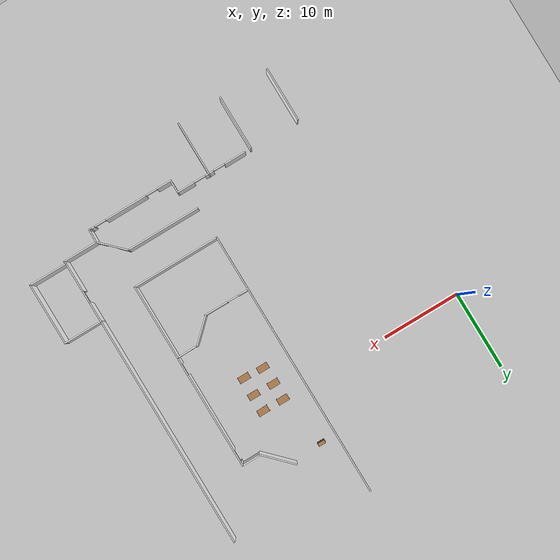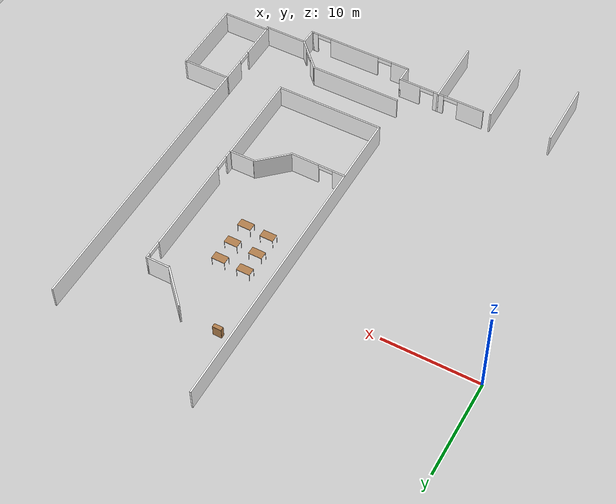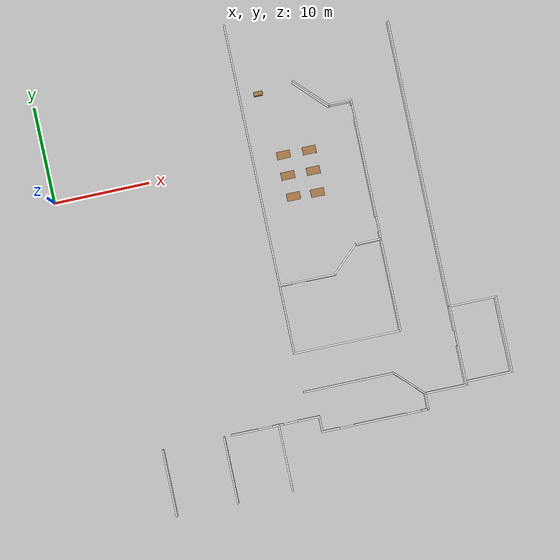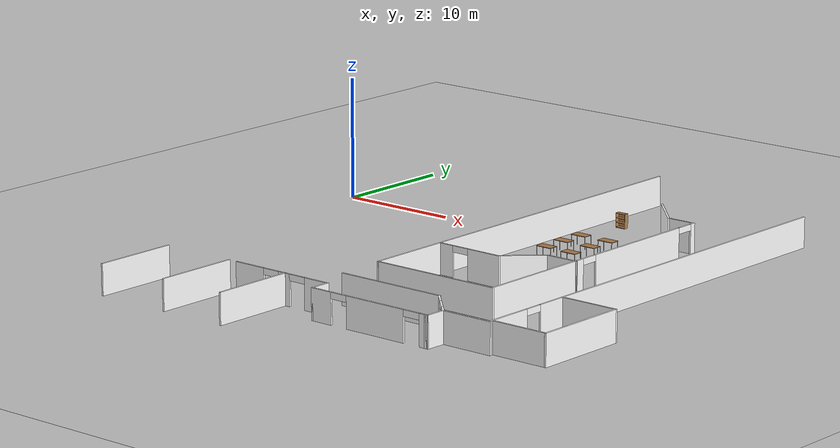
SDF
<sdf version="1.6">
 <world name="default">
  <model name="ground_plane">
   <static>1</static>
   <link name="link">
    <collision name="collision">
     <geometry><plane><normal>0 0 1</normal><size>100 100</size></plane></geometry>
     <surface><friction><ode><mu>100</mu><mu2>50</mu2></ode></friction></surface>
    </collision>
    <visual name="visual">
     <cast_shadows>0</cast_shadows>
     <geometry><plane><normal>0 0 1</normal><size>100 100</size></plane></geometry>
     <material>
      <script>
       <uri>model://office_env/materials/scripts</uri>
       <uri>model://office_env/materials/textures</uri>
       <name>wall</name>
      </script>
     </material>
    </visual>
   </link>
  </model>
  <model name="aule_N">
   <pose>0.1887 -1.4289 0 0 -0 0</pose>
   <link name="Wall_186">
    <pose>37.2203 -21.5545 0 0 0 -1.5708</pose>
    <visual name="Wall_186_Visual_0">
     <pose>-2.80179 0 1.25 0 -0 0</pose>
     <geometry><box><size>2.64642 0.15 2.5</size></box></geometry>
     <material>
      <script>
       <uri>model://office_env/materials/scripts</uri>
       <uri>model://office_env/materials/textures</uri>
       <name>wall</name>
      </script>
      <ambient>1 1 1 1</ambient>
     </material>
    </visual>
    <collision name="Wall_186_Collision_0">
     <geometry><box><size>2.64642 0.15 2.5</size></box></geometry>
     <pose>-2.80179 0 1.25 0 -0 0</pose>
    </collision>
    <visual name="Wall_186_Visual_1">
     <pose>2.07321 0 1.25 0 -0 0</pose>
     <geometry><box><size>4.10358 0.15 2.5</size></box></geometry>
     <material>
      <script>
       <uri>model://office_env/materials/scripts</uri>
       <uri>model://office_env/materials/textures</uri>
       <name>wall</name>
      </script>
      <ambient>1 1 1 1</ambient>
     </material>
    </visual>
    <collision name="Wall_186_Collision_1">
     <geometry><box><size>4.10358 0.15 2.5</size></box></geometry>
     <pose>2.07321 0 1.25 0 -0 0</pose>
    </collision>
    <visual name="Wall_186_Visual_2">
     <pose>-0.728584 0 2.25 0 -0 0</pose>
     <geometry><box><size>1.5 0.15 0.5</size></box></geometry>
     <material>
      <script>
       <uri>model://office_env/materials/scripts</uri>
       <uri>model://office_env/materials/textures</uri>
       <name>wall</name>
      </script>
      <ambient>1 1 1 1</ambient>
     </material>
    </visual>
    <collision name="Wall_186_Collision_2">
     <geometry><box><size>1.5 0.15 0.5</size></box></geometry>
     <pose>-0.728584 0 2.25 0 -0 0</pose>
    </collision>
   </link>
   <link name="Wall_192">
    <collision name="Wall_192_Collision">
     <geometry><box><size>9.5 0.15 2.5</size></box></geometry>
     <pose>0 0 1.25 0 -0 0</pose>
    </collision>
    <visual name="Wall_192_Visual">
     <pose>0 0 1.25 0 -0 0</pose>
     <geometry><box><size>9.5 0.15 2.5</size></box></geometry>
     <material>
      <script>
       <uri>model://office_env/materials/scripts</uri>
       <uri>model://office_env/materials/textures</uri>
       <name>wall</name>
      </script>
      <ambient>1 1 1 1</ambient>
     </material>
    </visual>
    <pose>25.5356 -22.9551 0 0 -0 0</pose>
   </link>
   <link name="Wall_193">
    <pose>31.5718 -24.3163 0 0 0 -0.785398</pose>
    <visual name="Wall_193_Visual_0">
     <pose>-1.29532 0 1.25 0 -0 0</pose>
     <geometry><box><size>1.40936 0.15 2.5</size></box></geometry>
     <material>
      <script>
       <uri>model://office_env/materials/scripts</uri>
       <uri>model://office_env/materials/textures</uri>
       <name>wall</name>
      </script>
      <ambient>1 1 1 1</ambient>
     </material>
    </visual>
    <collision name="Wall_193_Collision_0">
     <geometry><box><size>1.40936 0.15 2.5</size></box></geometry>
     <pose>-1.29532 0 1.25 0 -0 0</pose>
    </collision>
    <visual name="Wall_193_Visual_1">
     <pose>1.45468 0 1.25 0 -0 0</pose>
     <geometry><box><size>1.09064 0.15 2.5</size></box></geometry>
     <material>
      <script>
       <uri>model://office_env/materials/scripts</uri>
       <uri>model://office_env/materials/textures</uri>
       <name>wall</name>
      </script>
      <ambient>1 1 1 1</ambient>
     </material>
    </visual>
    <collision name="Wall_193_Collision_1">
     <geometry><box><size>1.09064 0.15 2.5</size></box></geometry>
     <pose>1.45468 0 1.25 0 -0 0</pose>
    </collision>
    <visual name="Wall_193_Visual_2">
     <pose>0.15936 0 2.25 0 -0 0</pose>
     <geometry><box><size>1.5 0.15 0.5</size></box></geometry>
     <material>
      <script>
       <uri>model://office_env/materials/scripts</uri>
       <uri>model://office_env/materials/textures</uri>
       <name>wall</name>
      </script>
      <ambient>1 1 1 1</ambient>
     </material>
    </visual>
    <collision name="Wall_193_Collision_2">
     <geometry><box><size>1.5 0.15 0.5</size></box></geometry>
     <pose>0.15936 0 2.25 0 -0 0</pose>
    </collision>
   </link>
   <link name="Wall_194">
    <collision name="Wall_194_Collision">
     <geometry><box><size>4.5 0.15 2.5</size></box></geometry>
     <pose>0 0 1.25 0 -0 0</pose>
    </collision>
    <visual name="Wall_194_Visual">
     <pose>0 0 1.25 0 -0 0</pose>
     <geometry><box><size>4.5 0.15 2.5</size></box></geometry>
     <material>
      <script>
       <uri>model://office_env/materials/scripts</uri>
       <uri>model://office_env/materials/textures</uri>
       <name>wall</name>
      </script>
      <ambient>1 1 1 1</ambient>
     </material>
    </visual>
    <pose>35.1079 -25.6775 0 0 -0 0</pose>
   </link>
   <link name="Wall_202">
    <pose>17.2908 -25.7162 0 0 -0 0</pose>
    <visual name="Wall_202_Visual_0">
     <pose>-3.22144 0 1.25 0 -0 0</pose>
     <geometry><box><size>2.80712 0.15 2.5</size></box></geometry>
     <material>
      <script>
       <uri>model://office_env/materials/scripts</uri>
       <uri>model://office_env/materials/textures</uri>
       <name>wall</name>
      </script>
      <ambient>1 1 1 1</ambient>
     </material>
    </visual>
    <collision name="Wall_202_Collision_0">
     <geometry><box><size>2.80712 0.15 2.5</size></box></geometry>
     <pose>-3.22144 0 1.25 0 -0 0</pose>
    </collision>
    <visual name="Wall_202_Visual_1">
     <pose>0.246922 0 1.25 0 -0 0</pose>
     <geometry><box><size>1.12961 0.15 2.5</size></box></geometry>
     <material>
      <script>
       <uri>model://office_env/materials/scripts</uri>
       <uri>model://office_env/materials/textures</uri>
       <name>wall</name>
      </script>
      <ambient>1 1 1 1</ambient>
     </material>
    </visual>
    <collision name="Wall_202_Collision_1">
     <geometry><box><size>1.12961 0.15 2.5</size></box></geometry>
     <pose>0.246922 0 1.25 0 -0 0</pose>
    </collision>
    <visual name="Wall_202_Visual_2">
     <pose>3.46836 0 1.25 0 -0 0</pose>
     <geometry><box><size>2.31327 0.15 2.5</size></box></geometry>
     <material>
      <script>
       <uri>model://office_env/materials/scripts</uri>
       <uri>model://office_env/materials/textures</uri>
       <name>wall</name>
      </script>
      <ambient>1 1 1 1</ambient>
     </material>
    </visual>
    <collision name="Wall_202_Collision_2">
     <geometry><box><size>2.31327 0.15 2.5</size></box></geometry>
     <pose>3.46836 0 1.25 0 -0 0</pose>
    </collision>
    <visual name="Wall_202_Visual_3">
     <pose>-1.06788 0 2.25 0 -0 0</pose>
     <geometry><box><size>1.5 0.15 0.5</size></box></geometry>
     <material>
      <script>
       <uri>model://office_env/materials/scripts</uri>
       <uri>model://office_env/materials/textures</uri>
       <name>wall</name>
      </script>
      <ambient>1 1 1 1</ambient>
     </material>
    </visual>
    <collision name="Wall_202_Collision_3">
     <geometry><box><size>1.5 0.15 0.5</size></box></geometry>
     <pose>-1.06788 0 2.25 0 -0 0</pose>
    </collision>
    <visual name="Wall_202_Visual_4">
     <pose>1.56173 0 2.25 0 -0 0</pose>
     <geometry><box><size>1.5 0.15 0.5</size></box></geometry>
     <material>
      <script>
       <uri>model://office_env/materials/scripts</uri>
       <uri>model://office_env/materials/textures</uri>
       <name>wall</name>
      </script>
      <ambient>1 1 1 1</ambient>
     </material>
    </visual>
    <collision name="Wall_202_Collision_4">
     <geometry><box><size>1.5 0.15 0.5</size></box></geometry>
     <pose>1.56173 0 2.25 0 -0 0</pose>
    </collision>
   </link>
   <link name="Wall_203">
    <collision name="Wall_203_Collision">
     <geometry><box><size>1.75 0.15 2.5</size></box></geometry>
     <pose>0 0 1.25 0 -0 0</pose>
    </collision>
    <visual name="Wall_203_Visual">
     <pose>0 0 1.25 0 -0 0</pose>
     <geometry><box><size>1.75 0.15 2.5</size></box></geometry>
     <material>
      <script>
       <uri>model://office_env/materials/scripts</uri>
       <uri>model://office_env/materials/textures</uri>
       <name>wall</name>
      </script>
      <ambient>1 1 1 1</ambient>
     </material>
    </visual>
    <pose>21.8408 -26.5162 0 0 0 -1.5708</pose>
   </link>
   <link name="Wall_204">
    <pose>27.2658 -27.3162 0 0 -0 0</pose>
    <visual name="Wall_204_Visual_0">
     <pose>-4.54037 0 1.25 0 -0 0</pose>
     <geometry><box><size>1.91926 0.15 2.5</size></box></geometry>
     <material>
      <script>
       <uri>model://office_env/materials/scripts</uri>
       <uri>model://office_env/materials/textures</uri>
       <name>wall</name>
      </script>
      <ambient>1 1 1 1</ambient>
     </material>
    </visual>
    <collision name="Wall_204_Collision_0">
     <geometry><box><size>1.91926 0.15 2.5</size></box></geometry>
     <pose>-4.54037 0 1.25 0 -0 0</pose>
    </collision>
    <visual name="Wall_204_Visual_1">
     <pose>0.656549 0 1.25 0 -0 0</pose>
     <geometry><box><size>5.47457 0.15 2.5</size></box></geometry>
     <material>
      <script>
       <uri>model://office_env/materials/scripts</uri>
       <uri>model://office_env/materials/textures</uri>
       <name>wall</name>
      </script>
      <ambient>1 1 1 1</ambient>
     </material>
    </visual>
    <collision name="Wall_204_Collision_1">
     <geometry><box><size>5.47457 0.15 2.5</size></box></geometry>
     <pose>0.656549 0 1.25 0 -0 0</pose>
    </collision>
    <visual name="Wall_204_Visual_2">
     <pose>5.19692 0 1.25 0 -0 0</pose>
     <geometry><box><size>0.606165 0.15 2.5</size></box></geometry>
     <material>
      <script>
       <uri>model://office_env/materials/scripts</uri>
       <uri>model://office_env/materials/textures</uri>
       <name>wall</name>
      </script>
      <ambient>1 1 1 1</ambient>
     </material>
    </visual>
    <collision name="Wall_204_Collision_2">
     <geometry><box><size>0.606165 0.15 2.5</size></box></geometry>
     <pose>5.19692 0 1.25 0 -0 0</pose>
    </collision>
    <visual name="Wall_204_Visual_3">
     <pose>-2.83074 0 2.25 0 -0 0</pose>
     <geometry><box><size>1.5 0.15 0.5</size></box></geometry>
     <material>
      <script>
       <uri>model://office_env/materials/scripts</uri>
       <uri>model://office_env/materials/textures</uri>
       <name>wall</name>
      </script>
      <ambient>1 1 1 1</ambient>
     </material>
    </visual>
    <collision name="Wall_204_Collision_3">
     <geometry><box><size>1.5 0.15 0.5</size></box></geometry>
     <pose>-2.83074 0 2.25 0 -0 0</pose>
    </collision>
    <visual name="Wall_204_Visual_4">
     <pose>4.14384 0 2.25 0 -0 0</pose>
     <geometry><box><size>1.5 0.15 0.5</size></box></geometry>
     <material>
      <script>
       <uri>model://office_env/materials/scripts</uri>
       <uri>model://office_env/materials/textures</uri>
       <name>wall</name>
      </script>
      <ambient>1 1 1 1</ambient>
     </material>
    </visual>
    <collision name="Wall_204_Collision_4">
     <geometry><box><size>1.5 0.15 0.5</size></box></geometry>
     <pose>4.14384 0 2.25 0 -0 0</pose>
    </collision>
   </link>
   <link name="Wall_205">
    <collision name="Wall_205_Collision">
     <geometry><box><size>0.25 0.15 2.5</size></box></geometry>
     <pose>0 0 1.25 0 -0 0</pose>
    </collision>
    <visual name="Wall_205_Visual">
     <pose>0 0 1.25 0 -0 0</pose>
     <geometry><box><size>0.25 0.15 2.5</size></box></geometry>
     <material>
      <script>
       <uri>model://office_env/materials/scripts</uri>
       <uri>model://office_env/materials/textures</uri>
       <name>wall</name>
      </script>
      <ambient>1 1 1 1</ambient>
     </material>
    </visual>
    <pose>32.7408 -27.3162 0 0 -0 0</pose>
   </link>
   <link name="Wall_206">
    <collision name="Wall_206_Collision">
     <geometry><box><size>0.25 0.15 2.5</size></box></geometry>
     <pose>0 0 1.25 0 -0 0</pose>
    </collision>
    <visual name="Wall_206_Visual">
     <pose>0 0 1.25 0 -0 0</pose>
     <geometry><box><size>0.25 0.15 2.5</size></box></geometry>
     <material>
      <script>
       <uri>model://office_env/materials/scripts</uri>
       <uri>model://office_env/materials/textures</uri>
       <name>wall</name>
      </script>
      <ambient>1 1 1 1</ambient>
     </material>
    </visual>
    <pose>32.8408 -27.3162 0 0 -0 0</pose>
   </link>
   <link name="Wall_207">
    <collision name="Wall_207_Collision">
     <geometry><box><size>1.78929 0.15 2.5</size></box></geometry>
     <pose>0 0 1.25 0 -0 0</pose>
    </collision>
    <visual name="Wall_207_Visual">
     <pose>0 0 1.25 0 -0 0</pose>
     <geometry><box><size>1.78929 0.15 2.5</size></box></geometry>
     <material>
      <script>
       <uri>model://office_env/materials/scripts</uri>
       <uri>model://office_env/materials/textures</uri>
       <name>wall</name>
      </script>
      <ambient>1 1 1 1</ambient>
     </material>
    </visual>
    <pose>32.9119 -26.4969 0 0 -0 1.54509</pose>
   </link>
   <link name="Wall_213">
    <collision name="Wall_213_Collision">
     <geometry><box><size>7 0.15 2.5</size></box></geometry>
     <pose>0 0 1.25 0 -0 0</pose>
    </collision>
    <visual name="Wall_213_Visual">
     <pose>0 0 1.25 0 -0 0</pose>
     <geometry><box><size>7 0.15 2.5</size></box></geometry>
     <material>
      <script>
       <uri>model://office_env/materials/scripts</uri>
       <uri>model://office_env/materials/textures</uri>
       <name>wall</name>
      </script>
      <ambient>1 1 1 1</ambient>
     </material>
    </visual>
    <pose>17.6159 -29.1253 0 0 0 -1.5708</pose>
   </link>
   <link name="Wall_217">
    <collision name="Wall_217_Collision">
     <geometry><box><size>7 0.15 2.5</size></box></geometry>
     <pose>0 0 1.25 0 -0 0</pose>
    </collision>
    <visual name="Wall_217_Visual">
     <pose>0 0 1.25 0 -0 0</pose>
     <geometry><box><size>7 0.15 2.5</size></box></geometry>
     <material>
      <script>
       <uri>model://office_env/materials/scripts</uri>
       <uri>model://office_env/materials/textures</uri>
       <name>wall</name>
      </script>
      <ambient>1 1 1 1</ambient>
     </material>
    </visual>
    <pose>11.8942 -29.1817 0 0 0 -1.5708</pose>
   </link>
   <link name="Wall_219">
    <collision name="Wall_219_Collision">
     <geometry><box><size>7 0.15 2.5</size></box></geometry>
     <pose>0 0 1.25 0 -0 0</pose>
    </collision>
    <visual name="Wall_219_Visual">
     <pose>0 0 1.25 0 -0 0</pose>
     <geometry><box><size>7 0.15 2.5</size></box></geometry>
     <material>
      <script>
       <uri>model://office_env/materials/scripts</uri>
       <uri>model://office_env/materials/textures</uri>
       <name>wall</name>
      </script>
      <ambient>1 1 1 1</ambient>
     </material>
    </visual>
    <pose>5.50219 -29.1817 0 0 0 -1.5708</pose>
   </link>
   <link name="Wall_34">
    <collision name="Wall_34_Collision">
     <geometry><box><size>5 0.15 2.5</size></box></geometry>
     <pose>0 0 1.25 0 -0 0</pose>
    </collision>
    <visual name="Wall_34_Visual">
     <pose>0 0 1.25 0 -0 0</pose>
     <geometry><box><size>5 0.15 2.5</size></box></geometry>
     <material>
      <script>
       <uri>model://office_env/materials/scripts</uri>
       <uri>model://office_env/materials/textures</uri>
       <name>wall</name>
      </script>
      <ambient>1 1 1 1</ambient>
     </material>
    </visual>
    <pose>39.6453 -25.3545 0 0 -0 0</pose>
   </link>
   <link name="Wall_35">
    <collision name="Wall_35_Collision">
     <geometry><box><size>8 0.15 2.5</size></box></geometry>
     <pose>0 0 1.25 0 -0 0</pose>
    </collision>
    <visual name="Wall_35_Visual">
     <pose>0 0 1.25 0 -0 0</pose>
     <geometry><box><size>8 0.15 2.5</size></box></geometry>
     <material>
      <script>
       <uri>model://office_env/materials/scripts</uri>
       <uri>model://office_env/materials/textures</uri>
       <name>wall</name>
      </script>
      <ambient>1 1 1 1</ambient>
     </material>
    </visual>
    <pose>42.0703 -21.4295 0 0 -0 1.5708</pose>
   </link>
   <link name="Wall_36">
    <collision name="Wall_36_Collision">
     <geometry><box><size>5 0.15 2.5</size></box></geometry>
     <pose>0 0 1.25 0 -0 0</pose>
    </collision>
    <visual name="Wall_36_Visual">
     <pose>0 0 1.25 0 -0 0</pose>
     <geometry><box><size>5 0.15 2.5</size></box></geometry>
     <material>
      <script>
       <uri>model://office_env/materials/scripts</uri>
       <uri>model://office_env/materials/textures</uri>
       <name>wall</name>
      </script>
      <ambient>1 1 1 1</ambient>
     </material>
    </visual>
    <pose>39.6453 -17.5045 0 0 -0 3.14159</pose>
   </link>
   <link name="Wall_37">
    <collision name="Wall_37_Collision">
     <geometry><box><size>30 0.15 2.5</size></box></geometry>
     <pose>0 0 1.25 0 -0 0</pose>
    </collision>
    <visual name="Wall_37_Visual">
     <pose>0 0 1.25 0 -0 0</pose>
     <geometry><box><size>30 0.15 2.5</size></box></geometry>
     <material>
      <script>
       <uri>model://office_env/materials/scripts</uri>
       <uri>model://office_env/materials/textures</uri>
       <name>wall</name>
      </script>
      <ambient>1 1 1 1</ambient>
     </material>
    </visual>
    <pose>37.2203 -2.57952 0 0 -0 1.5708</pose>
   </link>
   <link name="Wall_47">
    <collision name="Wall_47_Collision">
     <geometry><box><size>34.5 0.15 2.5</size></box></geometry>
     <pose>0 0 1.25 0 -0 0</pose>
    </collision>
    <visual name="Wall_47_Visual">
     <pose>0 0 1.25 0 -0 0</pose>
     <geometry><box><size>34.5 0.15 2.5</size></box></geometry>
     <material>
      <script>
       <uri>model://office_env/materials/scripts</uri>
       <uri>model://office_env/materials/textures</uri>
       <name>wall</name>
      </script>
      <ambient>1 1 1 1</ambient>
     </material>
    </visual>
    <pose>20.6929 -1.71111 0 0 -0 1.5708</pose>
   </link>
   <link name="Wall_71">
    <collision name="Wall_71_Collision">
     <geometry><box><size>4.57401 0.15 2.5</size></box></geometry>
     <pose>0 0 1.25 0 -0 0</pose>
    </collision>
    <visual name="Wall_71_Visual">
     <pose>0 0 1.25 0 -0 0</pose>
     <geometry><box><size>4.57401 0.15 2.5</size></box></geometry>
     <material>
      <script>
       <uri>model://office_env/materials/scripts</uri>
       <uri>model://office_env/materials/textures</uri>
       <name>wall</name>
      </script>
      <ambient>1 1 1 1</ambient>
     </material>
    </visual>
    <pose>27.9294 6.81961 0 0 0 -0.802267</pose>
   </link>
   <link name="Wall_72">
    <collision name="Wall_72_Collision">
     <geometry><box><size>2.5 0.15 2.5</size></box></geometry>
     <pose>0 0 1.25 0 -0 0</pose>
    </collision>
    <visual name="Wall_72_Visual">
     <pose>0 0 1.25 0 -0 0</pose>
     <geometry><box><size>2.5 0.15 2.5</size></box></geometry>
     <material>
      <script>
       <uri>model://office_env/materials/scripts</uri>
       <uri>model://office_env/materials/textures</uri>
       <name>wall</name>
      </script>
      <ambient>1 1 1 1</ambient>
     </material>
    </visual>
    <pose>30.6419 5.29968 0 0 -0 0</pose>
   </link>
   <link name="Wall_74">
    <collision name="Wall_74_Collision">
     <geometry><box><size>2.7028 0.15 2.5</size></box></geometry>
     <pose>0 0 1.25 0 -0 0</pose>
    </collision>
    <visual name="Wall_74_Visual">
     <pose>0 0 1.25 0 -0 0</pose>
     <geometry><box><size>2.7028 0.15 2.5</size></box></geometry>
     <material>
      <script>
       <uri>model://office_env/materials/scripts</uri>
       <uri>model://office_env/materials/textures</uri>
       <name>wall</name>
      </script>
      <ambient>1 1 1 1</ambient>
     </material>
    </visual>
    <pose>30.5208 -9.29683 0 0 0 -3.12997</pose>
   </link>
   <link name="Wall_80">
    <collision name="Wall_80_Collision">
     <geometry><box><size>3.78679 0.15 2.5</size></box></geometry>
     <pose>0 0 1.25 0 -0 0</pose>
    </collision>
    <visual name="Wall_80_Visual">
     <pose>0 0 1.25 0 -0 0</pose>
     <geometry><box><size>3.78679 0.15 2.5</size></box></geometry>
     <material>
      <script>
       <uri>model://office_env/materials/scripts</uri>
       <uri>model://office_env/materials/textures</uri>
       <name>wall</name>
      </script>
      <ambient>1 1 1 1</ambient>
     </material>
    </visual>
    <pose>27.8481 -10.5208 0 0 0 -2.38797</pose>
   </link>
   <link name="Wall_81">
    <pose>23.6204 -11.8349 0 0 -0 3.13358</pose>
    <visual name="Wall_81_Visual_0">
     <pose>-1.42133 0 1.25 0 -0 0</pose>
     <geometry><box><size>3.111 0.15 2.5</size></box></geometry>
     <material>
      <script>
       <uri>model://office_env/materials/scripts</uri>
       <uri>model://office_env/materials/textures</uri>
       <name>wall</name>
      </script>
      <ambient>1 1 1 1</ambient>
     </material>
    </visual>
    <collision name="Wall_81_Collision_0">
     <geometry><box><size>3.111 0.15 2.5</size></box></geometry>
     <pose>-1.42133 0 1.25 0 -0 0</pose>
    </collision>
    <visual name="Wall_81_Visual_1">
     <pose>2.3055 0 1.25 0 -0 0</pose>
     <geometry><box><size>1.34266 0.15 2.5</size></box></geometry>
     <material>
      <script>
       <uri>model://office_env/materials/scripts</uri>
       <uri>model://office_env/materials/textures</uri>
       <name>wall</name>
      </script>
      <ambient>1 1 1 1</ambient>
     </material>
    </visual>
    <collision name="Wall_81_Collision_1">
     <geometry><box><size>1.34266 0.15 2.5</size></box></geometry>
     <pose>2.3055 0 1.25 0 -0 0</pose>
    </collision>
    <visual name="Wall_81_Visual_2">
     <pose>0.88417 0 2.25 0 -0 0</pose>
     <geometry><box><size>1.5 0.15 0.5</size></box></geometry>
     <material>
      <script>
       <uri>model://office_env/materials/scripts</uri>
       <uri>model://office_env/materials/textures</uri>
       <name>wall</name>
      </script>
      <ambient>1 1 1 1</ambient>
     </material>
    </visual>
    <collision name="Wall_81_Collision_2">
     <geometry><box><size>1.5 0.15 0.5</size></box></geometry>
     <pose>0.88417 0 2.25 0 -0 0</pose>
    </collision>
   </link>
   <link name="Wall_87">
    <pose>31.8169 -1.89331 0 0 0 -1.5708</pose>
    <visual name="Wall_87_Visual_0">
     <pose>-7.01644 0 1.25 0 -0 0</pose>
     <geometry><box><size>0.503106 0.15 2.5</size></box></geometry>
     <material>
      <script>
       <uri>model://office_env/materials/scripts</uri>
       <uri>model://office_env/materials/textures</uri>
       <name>wall</name>
      </script>
      <ambient>1 1 1 1</ambient>
     </material>
    </visual>
    <collision name="Wall_87_Collision_0">
     <geometry><box><size>0.503106 0.15 2.5</size></box></geometry>
     <pose>-7.01644 0 1.25 0 -0 0</pose>
    </collision>
    <visual name="Wall_87_Visual_1">
     <pose>-0.110444 0 1.25 0 -0 0</pose>
     <geometry><box><size>10.3089 0.15 2.5</size></box></geometry>
     <material>
      <script>
       <uri>model://office_env/materials/scripts</uri>
       <uri>model://office_env/materials/textures</uri>
       <name>wall</name>
      </script>
      <ambient>1 1 1 1</ambient>
     </material>
    </visual>
    <collision name="Wall_87_Collision_1">
     <geometry><box><size>10.3089 0.15 2.5</size></box></geometry>
     <pose>-0.110444 0 1.25 0 -0 0</pose>
    </collision>
    <visual name="Wall_87_Visual_2">
     <pose>6.906 0 1.25 0 -0 0</pose>
     <geometry><box><size>0.723995 0.15 2.5</size></box></geometry>
     <material>
      <script>
       <uri>model://office_env/materials/scripts</uri>
       <uri>model://office_env/materials/textures</uri>
       <name>wall</name>
      </script>
      <ambient>1 1 1 1</ambient>
     </material>
    </visual>
    <collision name="Wall_87_Collision_2">
     <geometry><box><size>0.723995 0.15 2.5</size></box></geometry>
     <pose>6.906 0 1.25 0 -0 0</pose>
    </collision>
    <visual name="Wall_87_Visual_3">
     <pose>-6.01489 0 2.25 0 -0 0</pose>
     <geometry><box><size>1.5 0.15 0.5</size></box></geometry>
     <material>
      <script>
       <uri>model://office_env/materials/scripts</uri>
       <uri>model://office_env/materials/textures</uri>
       <name>wall</name>
      </script>
      <ambient>1 1 1 1</ambient>
     </material>
    </visual>
    <collision name="Wall_87_Collision_3">
     <geometry><box><size>1.5 0.15 0.5</size></box></geometry>
     <pose>-6.01489 0 2.25 0 -0 0</pose>
    </collision>
    <visual name="Wall_87_Visual_4">
     <pose>5.794 0 2.25 0 -0 0</pose>
     <geometry><box><size>1.5 0.15 0.5</size></box></geometry>
     <material>
      <script>
       <uri>model://office_env/materials/scripts</uri>
       <uri>model://office_env/materials/textures</uri>
       <name>wall</name>
      </script>
      <ambient>1 1 1 1</ambient>
     </material>
    </visual>
    <collision name="Wall_87_Collision_4">
     <geometry><box><size>1.5 0.15 0.5</size></box></geometry>
     <pose>5.794 0 2.25 0 -0 0</pose>
    </collision>
   </link>
   <link name="Wall_94">
    <collision name="Wall_94_Collision">
     <geometry><box><size>9.75 0.15 2.5</size></box></geometry>
     <pose>0 0 1.25 0 -0 0</pose>
    </collision>
    <visual name="Wall_94_Visual">
     <pose>0 0 1.25 0 -0 0</pose>
     <geometry><box><size>9.75 0.15 2.5</size></box></geometry>
     <material>
      <script>
       <uri>model://office_env/materials/scripts</uri>
       <uri>model://office_env/materials/textures</uri>
       <name>wall</name>
      </script>
      <ambient>1 1 1 1</ambient>
     </material>
    </visual>
    <pose>31.7971 -14.082 0 0 0 -1.5708</pose>
   </link>
   <link name="Wall_95">
    <collision name="Wall_95_Collision">
     <geometry><box><size>11.25 0.15 2.5</size></box></geometry>
     <pose>0 0 1.25 0 -0 0</pose>
    </collision>
    <visual name="Wall_95_Visual">
     <pose>0 0 1.25 0 -0 0</pose>
     <geometry><box><size>11.25 0.15 2.5</size></box></geometry>
     <material>
      <script>
       <uri>model://office_env/materials/scripts</uri>
       <uri>model://office_env/materials/textures</uri>
       <name>wall</name>
      </script>
      <ambient>1 1 1 1</ambient>
     </material>
    </visual>
    <pose>26.2471 -18.882 0 0 -0 3.14159</pose>
   </link>
   <static>1</static>
  </model>
  <model name="bookshelf_5">
   <static>1</static>
   <link name="link">
    <inertial><mass>1</mass></inertial>
    <collision name="back">
     <pose>0 0.005 0.6 0 -0 0</pose>
     <geometry><box><size>0.9 0.01 1.2</size></box></geometry>
    </collision>
    <visual name="visual1">
     <pose>0 0.005 0.6 0 -0 0</pose>
     <geometry><box><size>0.9 0.01 1.2</size></box></geometry>
     <material>
      <script><uri>file://media/materials/scripts/gazebo.material</uri><name>Gazebo/Wood</name></script>
     </material>
    </visual>
    <collision name="left_side">
     <pose>0.45 -0.195 0.6 0 -0 0</pose>
     <geometry><box><size>0.02 0.4 1.2</size></box></geometry>
    </collision>
    <visual name="visual2">
     <pose>0.45 -0.195 0.6 0 -0 0</pose>
     <geometry><box><size>0.02 0.4 1.2</size></box></geometry>
     <material>
      <script><uri>file://media/materials/scripts/gazebo.material</uri><name>Gazebo/Wood</name></script>
     </material>
    </visual>
    <collision name="right_side">
     <pose>-0.45 -0.195 0.6 0 -0 0</pose>
     <geometry><box><size>0.02 0.4 1.2</size></box></geometry>
    </collision>
    <visual name="visual3">
     <pose>-0.45 -0.195 0.6 0 -0 0</pose>
     <geometry><box><size>0.02 0.4 1.2</size></box></geometry>
     <material>
      <script><uri>file://media/materials/scripts/gazebo.material</uri><name>Gazebo/Wood</name></script>
     </material>
    </visual>
    <collision name="bottom">
     <pose>0 -0.195 0.03 0 -0 0</pose>
     <geometry><box><size>0.88 0.4 0.06</size></box></geometry>
    </collision>
    <visual name="visual4">
     <pose>0 -0.195 0.03 0 -0 0</pose>
     <geometry><box><size>0.88 0.4 0.06</size></box></geometry>
     <material>
      <script><uri>file://media/materials/scripts/gazebo.material</uri><name>Gazebo/Wood</name></script>
     </material>
    </visual>
    <collision name="top">
     <pose>0 -0.195 1.19 0 -0 0</pose>
     <geometry><box><size>0.88 0.4 0.02</size></box></geometry>
    </collision>
    <visual name="visual5">
     <pose>0 -0.195 1.19 0 -0 0</pose>
     <geometry><box><size>0.88 0.4 0.02</size></box></geometry>
     <material>
      <script><uri>file://media/materials/scripts/gazebo.material</uri><name>Gazebo/Wood</name></script>
     </material>
    </visual>
    <collision name="low_shelf">
     <pose>0 -0.195 0.43 0 -0 0</pose>
     <geometry><box><size>0.88 0.4 0.02</size></box></geometry>
    </collision>
    <visual name="visual6">
     <pose>0 -0.195 0.43 0 -0 0</pose>
     <geometry><box><size>0.88 0.4 0.02</size></box></geometry>
     <material>
      <script><uri>file://media/materials/scripts/gazebo.material</uri><name>Gazebo/Wood</name></script>
     </material>
    </visual>
    <collision name="high_shelf">
     <pose>0 -0.195 0.8 0 -0 0</pose>
     <geometry><box><size>0.88 0.4 0.02</size></box></geometry>
    </collision>
    <visual name="visual7">
     <pose>0 -0.195 0.8 0 -0 0</pose>
     <geometry><box><size>0.88 0.4 0.02</size></box></geometry>
     <material>
      <script><uri>file://media/materials/scripts/gazebo.material</uri><name>Gazebo/Wood</name></script>
     </material>
    </visual>
   </link>
   <pose>22.8618 6.78931 0 0 -0 0</pose>
  </model>
  <model name="table_9">
   <static>0</static>
   <link name="link">
    <collision name="surface">
     <pose>0 0 1 0 -0 0</pose>
     <geometry><box><size>1.5 0.8 0.03</size></box></geometry>
     <surface><friction><ode><mu>0.6</mu><mu2>0.6</mu2></ode></friction></surface>
    </collision>
    <visual name="visual1">
     <pose>0 0 1 0 -0 0</pose>
     <geometry><box><size>1.4 0.8 0.04</size></box></geometry>
     <material>
      <script><uri>file://media/materials/scripts/gazebo.material</uri><name>Gazebo/Wood</name></script>
     </material>
    </visual>
    <collision name="front_left_leg">
     <pose>0.68 0.38 0.5 0 -0 0</pose>
     <geometry><cylinder><radius>0.02</radius><length>1</length></cylinder></geometry>
    </collision>
    <visual name="front_left_leg">
     <pose>0.68 0.38 0.5 0 -0 0</pose>
     <geometry><cylinder><radius>0.02</radius><length>1</length></cylinder></geometry>
     <material>
      <script>
       <uri>model://office_env/materials/scripts</uri>
       <uri>model://office_env/materials/textures</uri>
       <name>wall</name>
      </script>
     </material>
    </visual>
    <collision name="front_right_leg">
     <pose>0.68 -0.38 0.5 0 -0 0</pose>
     <geometry><cylinder><radius>0.02</radius><length>1</length></cylinder></geometry>
    </collision>
    <visual name="front_right_leg">
     <pose>0.68 -0.38 0.5 0 -0 0</pose>
     <geometry><cylinder><radius>0.02</radius><length>1</length></cylinder></geometry>
     <material>
      <script>
       <uri>model://office_env/materials/scripts</uri>
       <uri>model://office_env/materials/textures</uri>
       <name>wall</name>
      </script>
     </material>
    </visual>
    <collision name="back_right_leg">
     <pose>-0.68 -0.38 0.5 0 -0 0</pose>
     <geometry><cylinder><radius>0.02</radius><length>1</length></cylinder></geometry>
    </collision>
    <visual name="back_right_leg">
     <pose>-0.68 -0.38 0.5 0 -0 0</pose>
     <geometry><cylinder><radius>0.02</radius><length>1</length></cylinder></geometry>
     <material>
      <script>
       <uri>model://office_env/materials/scripts</uri>
       <uri>model://office_env/materials/textures</uri>
       <name>wall</name>
      </script>
     </material>
    </visual>
    <collision name="back_left_leg">
     <pose>-0.68 0.38 0.5 0 -0 0</pose>
     <geometry><cylinder><radius>0.02</radius><length>1</length></cylinder></geometry>
    </collision>
    <visual name="back_left_leg">
     <pose>-0.68 0.38 0.5 0 -0 0</pose>
     <geometry><cylinder><radius>0.02</radius><length>1</length></cylinder></geometry>
     <material>
      <script>
       <uri>model://office_env/materials/scripts</uri>
       <uri>model://office_env/materials/textures</uri>
       <name>wall</name>
      </script>
     </material>
    </visual>
    <inertial>
     <inertia><ixx>1</ixx><ixy>0</ixy><ixz>0</ixz><iyy>1</iyy><iyz>0</iyz><izz>1</izz></inertia>
     <mass>1</mass>
    </inertial>
   </link>
   <pose>26.7826 -0.176474 0.009992 0 -0 0</pose>
  </model>
  <model name="table_10">
   <static>0</static>
   <link name="link">
    <collision name="surface">
     <pose>0 0 1 0 -0 0</pose>
     <geometry><box><size>1.5 0.8 0.03</size></box></geometry>
     <surface><friction><ode><mu>0.6</mu><mu2>0.6</mu2></ode></friction></surface>
    </collision>
    <visual name="visual1">
     <pose>0 0 1 0 -0 0</pose>
     <geometry><box><size>1.4 0.8 0.04</size></box></geometry>
     <material>
      <script><uri>file://media/materials/scripts/gazebo.material</uri><name>Gazebo/Wood</name></script>
     </material>
    </visual>
    <collision name="front_left_leg">
     <pose>0.68 0.38 0.5 0 -0 0</pose>
     <geometry><cylinder><radius>0.02</radius><length>1</length></cylinder></geometry>
    </collision>
    <visual name="front_left_leg">
     <pose>0.68 0.38 0.5 0 -0 0</pose>
     <geometry><cylinder><radius>0.02</radius><length>1</length></cylinder></geometry>
     <material>
      <script>
       <uri>model://office_env/materials/scripts</uri>
       <uri>model://office_env/materials/textures</uri>
       <name>wall</name>
      </script>
     </material>
    </visual>
    <collision name="front_right_leg">
     <pose>0.68 -0.38 0.5 0 -0 0</pose>
     <geometry><cylinder><radius>0.02</radius><length>1</length></cylinder></geometry>
    </collision>
    <visual name="front_right_leg">
     <pose>0.68 -0.38 0.5 0 -0 0</pose>
     <geometry><cylinder><radius>0.02</radius><length>1</length></cylinder></geometry>
     <material>
      <script>
       <uri>model://office_env/materials/scripts</uri>
       <uri>model://office_env/materials/textures</uri>
       <name>wall</name>
      </script>
     </material>
    </visual>
    <collision name="back_right_leg">
     <pose>-0.68 -0.38 0.5 0 -0 0</pose>
     <geometry><cylinder><radius>0.02</radius><length>1</length></cylinder></geometry>
    </collision>
    <visual name="back_right_leg">
     <pose>-0.68 -0.38 0.5 0 -0 0</pose>
     <geometry><cylinder><radius>0.02</radius><length>1</length></cylinder></geometry>
     <material>
      <script>
       <uri>model://office_env/materials/scripts</uri>
       <uri>model://office_env/materials/textures</uri>
       <name>wall</name>
      </script>
     </material>
    </visual>
    <collision name="back_left_leg">
     <pose>-0.68 0.38 0.5 0 -0 0</pose>
     <geometry><cylinder><radius>0.02</radius><length>1</length></cylinder></geometry>
    </collision>
    <visual name="back_left_leg">
     <pose>-0.68 0.38 0.5 0 -0 0</pose>
     <geometry><cylinder><radius>0.02</radius><length>1</length></cylinder></geometry>
     <material>
      <script>
       <uri>model://office_env/materials/scripts</uri>
       <uri>model://office_env/materials/textures</uri>
       <name>wall</name>
      </script>
     </material>
    </visual>
    <inertial>
     <inertia><ixx>1</ixx><ixy>0</ixy><ixz>0</ixz><iyy>1</iyy><iyz>0</iyz><izz>1</izz></inertia>
     <mass>1</mass>
    </inertial>
   </link>
   <pose>26.7519 -2.34116 0.009992 0 -0 0</pose>
  </model>
  <model name="table_11">
   <static>0</static>
   <link name="link">
    <collision name="surface">
     <pose>0 0 1 0 -0 0</pose>
     <geometry><box><size>1.5 0.8 0.03</size></box></geometry>
     <surface><friction><ode><mu>0.6</mu><mu2>0.6</mu2></ode></friction></surface>
    </collision>
    <visual name="visual1">
     <pose>0 0 1 0 -0 0</pose>
     <geometry><box><size>1.4 0.8 0.04</size></box></geometry>
     <material>
      <script><uri>file://media/materials/scripts/gazebo.material</uri><name>Gazebo/Wood</name></script>
     </material>
    </visual>
    <collision name="front_left_leg">
     <pose>0.68 0.38 0.5 0 -0 0</pose>
     <geometry><cylinder><radius>0.02</radius><length>1</length></cylinder></geometry>
    </collision>
    <visual name="front_left_leg">
     <pose>0.68 0.38 0.5 0 -0 0</pose>
     <geometry><cylinder><radius>0.02</radius><length>1</length></cylinder></geometry>
     <material>
      <script>
       <uri>model://office_env/materials/scripts</uri>
       <uri>model://office_env/materials/textures</uri>
       <name>wall</name>
      </script>
     </material>
    </visual>
    <collision name="front_right_leg">
     <pose>0.68 -0.38 0.5 0 -0 0</pose>
     <geometry><cylinder><radius>0.02</radius><length>1</length></cylinder></geometry>
    </collision>
    <visual name="front_right_leg">
     <pose>0.68 -0.38 0.5 0 -0 0</pose>
     <geometry><cylinder><radius>0.02</radius><length>1</length></cylinder></geometry>
     <material>
      <script>
       <uri>model://office_env/materials/scripts</uri>
       <uri>model://office_env/materials/textures</uri>
       <name>wall</name>
      </script>
     </material>
    </visual>
    <collision name="back_right_leg">
     <pose>-0.68 -0.38 0.5 0 -0 0</pose>
     <geometry><cylinder><radius>0.02</radius><length>1</length></cylinder></geometry>
    </collision>
    <visual name="back_right_leg">
     <pose>-0.68 -0.38 0.5 0 -0 0</pose>
     <geometry><cylinder><radius>0.02</radius><length>1</length></cylinder></geometry>
     <material>
      <script>
       <uri>model://office_env/materials/scripts</uri>
       <uri>model://office_env/materials/textures</uri>
       <name>wall</name>
      </script>
     </material>
    </visual>
    <collision name="back_left_leg">
     <pose>-0.68 0.38 0.5 0 -0 0</pose>
     <geometry><cylinder><radius>0.02</radius><length>1</length></cylinder></geometry>
    </collision>
    <visual name="back_left_leg">
     <pose>-0.68 0.38 0.5 0 -0 0</pose>
     <geometry><cylinder><radius>0.02</radius><length>1</length></cylinder></geometry>
     <material>
      <script>
       <uri>model://office_env/materials/scripts</uri>
       <uri>model://office_env/materials/textures</uri>
       <name>wall</name>
      </script>
     </material>
    </visual>
    <inertial>
     <inertia><ixx>1</ixx><ixy>0</ixy><ixz>0</ixz><iyy>1</iyy><iyz>0</iyz><izz>1</izz></inertia>
     <mass>1</mass>
    </inertial>
   </link>
   <pose>26.6947 -4.63996 0.009992 0 -0 0</pose>
  </model>
  <model name="table_12">
   <static>0</static>
   <link name="link">
    <collision name="surface">
     <pose>0 0 1 0 -0 0</pose>
     <geometry><box><size>1.5 0.8 0.03</size></box></geometry>
     <surface><friction><ode><mu>0.6</mu><mu2>0.6</mu2></ode></friction></surface>
    </collision>
    <visual name="visual1">
     <pose>0 0 1 0 -0 0</pose>
     <geometry><box><size>1.4 0.8 0.04</size></box></geometry>
     <material>
      <script><uri>file://media/materials/scripts/gazebo.material</uri><name>Gazebo/Wood</name></script>
     </material>
    </visual>
    <collision name="front_left_leg">
     <pose>0.68 0.38 0.5 0 -0 0</pose>
     <geometry><cylinder><radius>0.02</radius><length>1</length></cylinder></geometry>
    </collision>
    <visual name="front_left_leg">
     <pose>0.68 0.38 0.5 0 -0 0</pose>
     <geometry><cylinder><radius>0.02</radius><length>1</length></cylinder></geometry>
     <material>
      <script>
       <uri>model://office_env/materials/scripts</uri>
       <uri>model://office_env/materials/textures</uri>
       <name>wall</name>
      </script>
     </material>
    </visual>
    <collision name="front_right_leg">
     <pose>0.68 -0.38 0.5 0 -0 0</pose>
     <geometry><cylinder><radius>0.02</radius><length>1</length></cylinder></geometry>
    </collision>
    <visual name="front_right_leg">
     <pose>0.68 -0.38 0.5 0 -0 0</pose>
     <geometry><cylinder><radius>0.02</radius><length>1</length></cylinder></geometry>
     <material>
      <script>
       <uri>model://office_env/materials/scripts</uri>
       <uri>model://office_env/materials/textures</uri>
       <name>wall</name>
      </script>
     </material>
    </visual>
    <collision name="back_right_leg">
     <pose>-0.68 -0.38 0.5 0 -0 0</pose>
     <geometry><cylinder><radius>0.02</radius><length>1</length></cylinder></geometry>
    </collision>
    <visual name="back_right_leg">
     <pose>-0.68 -0.38 0.5 0 -0 0</pose>
     <geometry><cylinder><radius>0.02</radius><length>1</length></cylinder></geometry>
     <material>
      <script>
       <uri>model://office_env/materials/scripts</uri>
       <uri>model://office_env/materials/textures</uri>
       <name>wall</name>
      </script>
     </material>
    </visual>
    <collision name="back_left_leg">
     <pose>-0.68 0.38 0.5 0 -0 0</pose>
     <geometry><cylinder><radius>0.02</radius><length>1</length></cylinder></geometry>
    </collision>
    <visual name="back_left_leg">
     <pose>-0.68 0.38 0.5 0 -0 0</pose>
     <geometry><cylinder><radius>0.02</radius><length>1</length></cylinder></geometry>
     <material>
      <script>
       <uri>model://office_env/materials/scripts</uri>
       <uri>model://office_env/materials/textures</uri>
       <name>wall</name>
      </script>
     </material>
    </visual>
    <inertial>
     <inertia><ixx>1</ixx><ixy>0</ixy><ixz>0</ixz><iyy>1</iyy><iyz>0</iyz><izz>1</izz></inertia>
     <mass>1</mass>
    </inertial>
   </link>
   <pose>24.0927 -0.121888 0.009992 0 -0 0</pose>
  </model>
  <model name="table_13">
   <static>0</static>
   <link name="link">
    <collision name="surface">
     <pose>0 0 1 0 -0 0</pose>
     <geometry><box><size>1.5 0.8 0.03</size></box></geometry>
     <surface><friction><ode><mu>0.6</mu><mu2>0.6</mu2></ode></friction></surface>
    </collision>
    <visual name="visual1">
     <pose>0 0 1 0 -0 0</pose>
     <geometry><box><size>1.4 0.8 0.04</size></box></geometry>
     <material>
      <script><uri>file://media/materials/scripts/gazebo.material</uri><name>Gazebo/Wood</name></script>
     </material>
    </visual>
    <collision name="front_left_leg">
     <pose>0.68 0.38 0.5 0 -0 0</pose>
     <geometry><cylinder><radius>0.02</radius><length>1</length></cylinder></geometry>
    </collision>
    <visual name="front_left_leg">
     <pose>0.68 0.38 0.5 0 -0 0</pose>
     <geometry><cylinder><radius>0.02</radius><length>1</length></cylinder></geometry>
     <material>
      <script>
       <uri>model://office_env/materials/scripts</uri>
       <uri>model://office_env/materials/textures</uri>
       <name>wall</name>
      </script>
     </material>
    </visual>
    <collision name="front_right_leg">
     <pose>0.68 -0.38 0.5 0 -0 0</pose>
     <geometry><cylinder><radius>0.02</radius><length>1</length></cylinder></geometry>
    </collision>
    <visual name="front_right_leg">
     <pose>0.68 -0.38 0.5 0 -0 0</pose>
     <geometry><cylinder><radius>0.02</radius><length>1</length></cylinder></geometry>
     <material>
      <script>
       <uri>model://office_env/materials/scripts</uri>
       <uri>model://office_env/materials/textures</uri>
       <name>wall</name>
      </script>
     </material>
    </visual>
    <collision name="back_right_leg">
     <pose>-0.68 -0.38 0.5 0 -0 0</pose>
     <geometry><cylinder><radius>0.02</radius><length>1</length></cylinder></geometry>
    </collision>
    <visual name="back_right_leg">
     <pose>-0.68 -0.38 0.5 0 -0 0</pose>
     <geometry><cylinder><radius>0.02</radius><length>1</length></cylinder></geometry>
     <material>
      <script>
       <uri>model://office_env/materials/scripts</uri>
       <uri>model://office_env/materials/textures</uri>
       <name>wall</name>
      </script>
     </material>
    </visual>
    <collision name="back_left_leg">
     <pose>-0.68 0.38 0.5 0 -0 0</pose>
     <geometry><cylinder><radius>0.02</radius><length>1</length></cylinder></geometry>
    </collision>
    <visual name="back_left_leg">
     <pose>-0.68 0.38 0.5 0 -0 0</pose>
     <geometry><cylinder><radius>0.02</radius><length>1</length></cylinder></geometry>
     <material>
      <script>
       <uri>model://office_env/materials/scripts</uri>
       <uri>model://office_env/materials/textures</uri>
       <name>wall</name>
      </script>
     </material>
    </visual>
    <inertial>
     <inertia><ixx>1</ixx><ixy>0</ixy><ixz>0</ixz><iyy>1</iyy><iyz>0</iyz><izz>1</izz></inertia>
     <mass>1</mass>
    </inertial>
   </link>
   <pose>24.0865 -2.28148 0.009992 0 -0 0</pose>
  </model>
  <model name="table_14">
   <static>0</static>
   <link name="link">
    <collision name="surface">
     <pose>0 0 1 0 -0 0</pose>
     <geometry><box><size>1.5 0.8 0.03</size></box></geometry>
     <surface><friction><ode><mu>0.6</mu><mu2>0.6</mu2></ode></friction></surface>
    </collision>
    <visual name="visual1">
     <pose>0 0 1 0 -0 0</pose>
     <geometry><box><size>1.4 0.8 0.04</size></box></geometry>
     <material>
      <script><uri>file://media/materials/scripts/gazebo.material</uri><name>Gazebo/Wood</name></script>
     </material>
    </visual>
    <collision name="front_left_leg">
     <pose>0.68 0.38 0.5 0 -0 0</pose>
     <geometry><cylinder><radius>0.02</radius><length>1</length></cylinder></geometry>
    </collision>
    <visual name="front_left_leg">
     <pose>0.68 0.38 0.5 0 -0 0</pose>
     <geometry><cylinder><radius>0.02</radius><length>1</length></cylinder></geometry>
     <material>
      <script>
       <uri>model://office_env/materials/scripts</uri>
       <uri>model://office_env/materials/textures</uri>
       <name>wall</name>
      </script>
     </material>
    </visual>
    <collision name="front_right_leg">
     <pose>0.68 -0.38 0.5 0 -0 0</pose>
     <geometry><cylinder><radius>0.02</radius><length>1</length></cylinder></geometry>
    </collision>
    <visual name="front_right_leg">
     <pose>0.68 -0.38 0.5 0 -0 0</pose>
     <geometry><cylinder><radius>0.02</radius><length>1</length></cylinder></geometry>
     <material>
      <script>
       <uri>model://office_env/materials/scripts</uri>
       <uri>model://office_env/materials/textures</uri>
       <name>wall</name>
      </script>
     </material>
    </visual>
    <collision name="back_right_leg">
     <pose>-0.68 -0.38 0.5 0 -0 0</pose>
     <geometry><cylinder><radius>0.02</radius><length>1</length></cylinder></geometry>
    </collision>
    <visual name="back_right_leg">
     <pose>-0.68 -0.38 0.5 0 -0 0</pose>
     <geometry><cylinder><radius>0.02</radius><length>1</length></cylinder></geometry>
     <material>
      <script>
       <uri>model://office_env/materials/scripts</uri>
       <uri>model://office_env/materials/textures</uri>
       <name>wall</name>
      </script>
     </material>
    </visual>
    <collision name="back_left_leg">
     <pose>-0.68 0.38 0.5 0 -0 0</pose>
     <geometry><cylinder><radius>0.02</radius><length>1</length></cylinder></geometry>
    </collision>
    <visual name="back_left_leg">
     <pose>-0.68 0.38 0.5 0 -0 0</pose>
     <geometry><cylinder><radius>0.02</radius><length>1</length></cylinder></geometry>
     <material>
      <script>
       <uri>model://office_env/materials/scripts</uri>
       <uri>model://office_env/materials/textures</uri>
       <name>wall</name>
      </script>
     </material>
    </visual>
    <inertial>
     <inertia><ixx>1</ixx><ixy>0</ixy><ixz>0</ixz><iyy>1</iyy><iyz>0</iyz><izz>1</izz></inertia>
     <mass>1</mass>
    </inertial>
   </link>
   <pose>24.199 -4.51956 0.009992 0 -0 0</pose>
  </model>
 </world>
</sdf>
